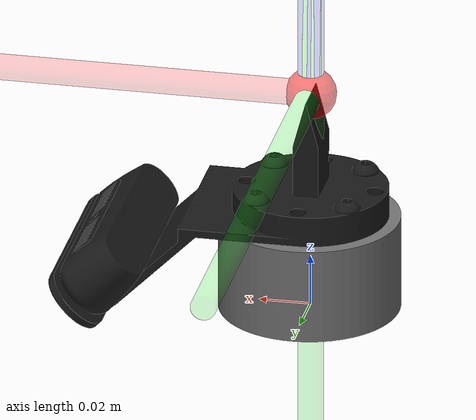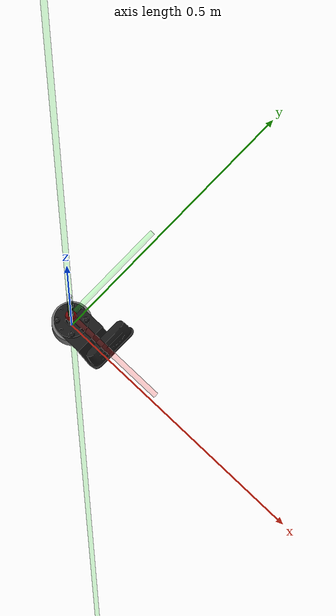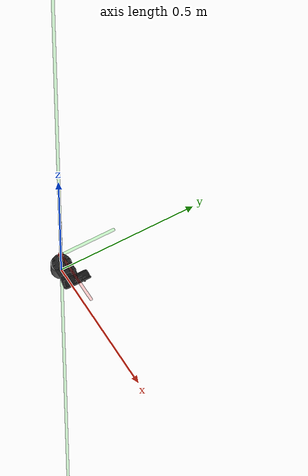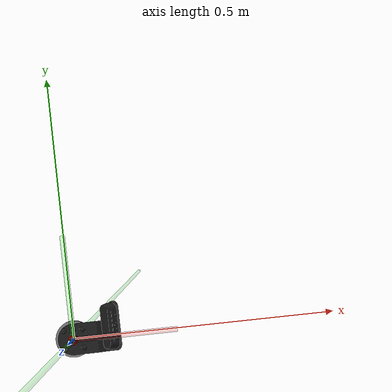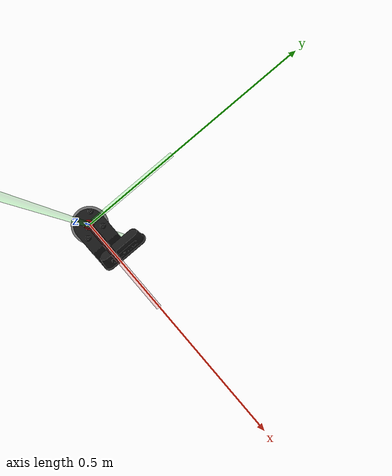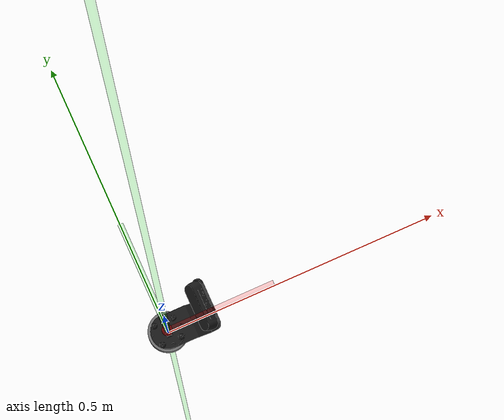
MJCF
<mujoco model="prying_tool_gripper">
    <asset>
        <mesh name="m_tool" file="meshes/prying_tool_gripper/tool.stl" />
        <mesh name="headless_peg_and_camera" file="meshes/peg_gripper/headless_peg_and_camera.STL" />
        <mesh name="ft_sensor" file="meshes/peg_gripper/ft_sensor.STL" />

    </asset>
    <worldbody>
        <body name="gripper" pos="0 0 0">
            <inertial pos="0 0 0" mass="3e-1" diaginertia="1e-2 1e-2 1e-2" />
            <!-- This site was added for visualization. -->
            <body name="eef" pos="0 0 0.08816" quat="1 0 0 0">
                <site name="grip_site" pos="0 0 0" size="0.01 0.01 0.01" rgba="1 0 0 0.5" type="sphere" group="1"/>
                <site name="ee_x" pos="0.1 0 0" size="0.005 .1"  quat="0.707105  0 0.707108 0 " rgba="1 0 0 .1" type="cylinder" group="1"/>
                <site name="ee_y" pos="0 0.1 0" size="0.005 .1" quat="0.707105 0.707108 0 0" rgba="0 1 0 .1" type="cylinder" group="1"/>
                <site name="ee_z" pos="0 0 0.1" size="0.005 .1" quat="1 0 0 0" rgba="0 0 1 .1" type="cylinder" group="1"/>
                <!-- This site was added for visualization. -->
                <site name="grip_site_cylinder" pos="0 0 0" size="0.005 10" rgba="0 1 0 0.1" type="cylinder" group="1"/>
            </body>
            <body name="ft_sensor" quat="1 0 0 0">
                <inertial pos="0.00005 0.00000 0.01664" mass="0.245" diaginertia="0.00010 0.00011 0.00015" />
                <geom type="mesh" name="ft_sensor_viz" rgba="0.45 0.45 0.45 1" contype="0" conaffinity="0" group="1" mesh="ft_sensor"/>
                <geom type="mesh" name="ft_sensor_collision" rgba="0 0 1 1" contype="0" mesh="ft_sensor"/>
                <body name="pry_tool_and_camera" pos="0 0 0.0375" quat="1 0 0 0">
                    <inertial pos="0.04835 0.01068 -0.00317" mass="0.14730" diaginertia="0.00011 0.00020 0.00024" />
                    <camera name="gripper_cam" pos="0.064 0 0.001" quat="0.271 0.653 0.653 0.271" resolution="424 240" sensorsize="0.00394 0.00248" focal="0.00193 0.00193"/>
                    <geom type="mesh" name="headless_peg_and_camera_viz" rgba="0.1 0.1 0.1 1" contype="0" conaffinity="0" group="1" mesh="headless_peg_and_camera"/>
                    <geom type="mesh" name="headless_peg_and_camera_collision" rgba="0 0 1 1" contype="0" group="0" mesh="headless_peg_and_camera"/>
                    <geom type="mesh" name="pry_head_viz" pos="0 0 0.03133" rgba="0.1 0.1 0.1 1" contype="0" conaffinity="0" group="1" mesh="m_tool" friction="0.0 0.005 0.0001" />
                    <geom type="mesh" name="pry_head_collision" pos="0 0 0.03133" rgba="0 0 1 1" contype="0" group="0" mesh="m_tool" friction="0.0 0.005 0.0001"/>
                    <site name="ft_frame" pos="0 0 0.0" size="0.0001 0.0001 0.0001" rgba="1 0 0 0.1" type="sphere" group="1" quat="1 0 0 0"/>
                </body>
            </body>
        </body>
    </worldbody>
    <sensor>
        <force name="force_ee" site="ft_frame"/>
        <torque name="torque_ee" site="ft_frame"/>
    </sensor>
</mujoco>
